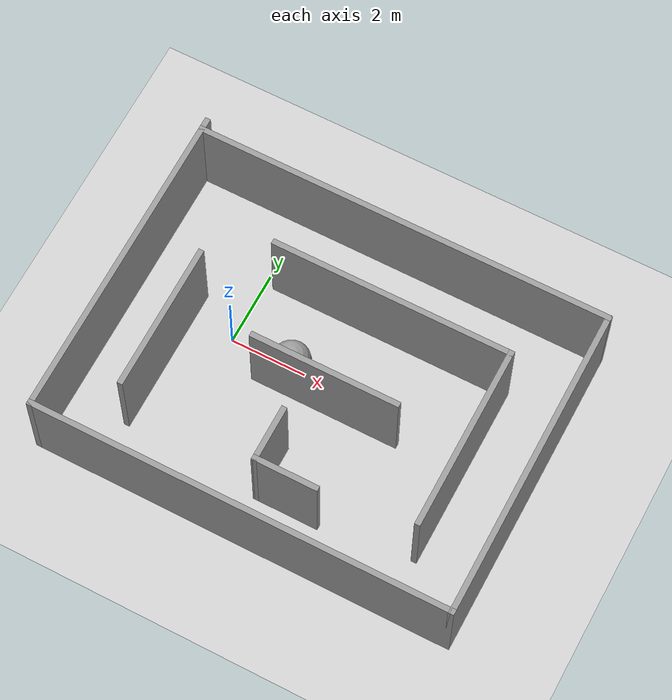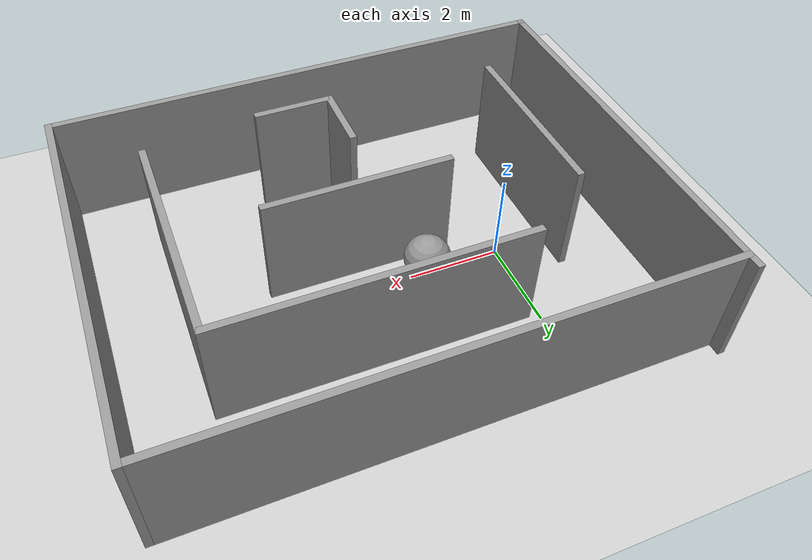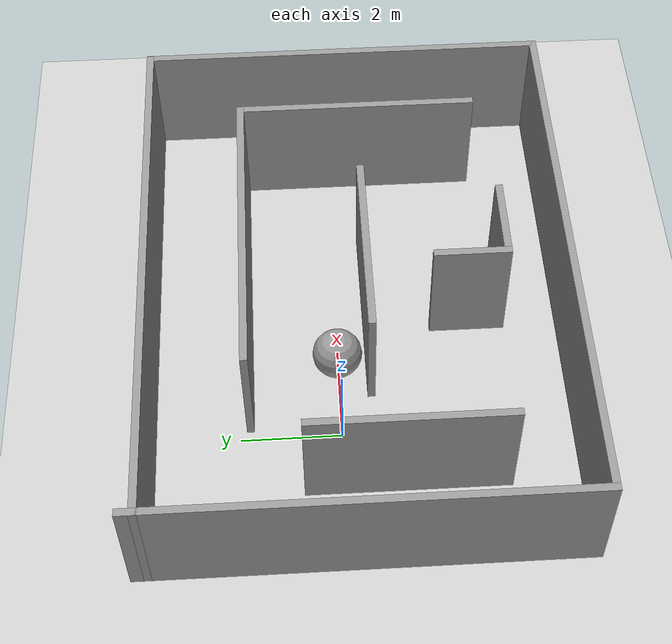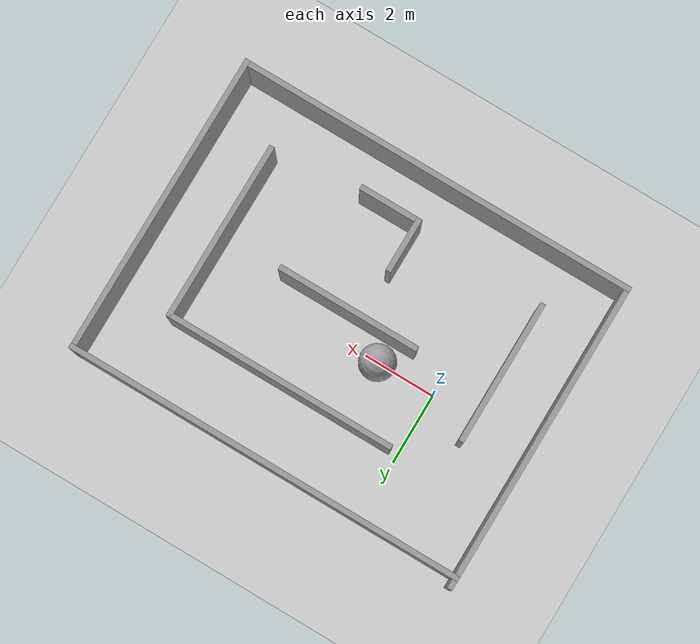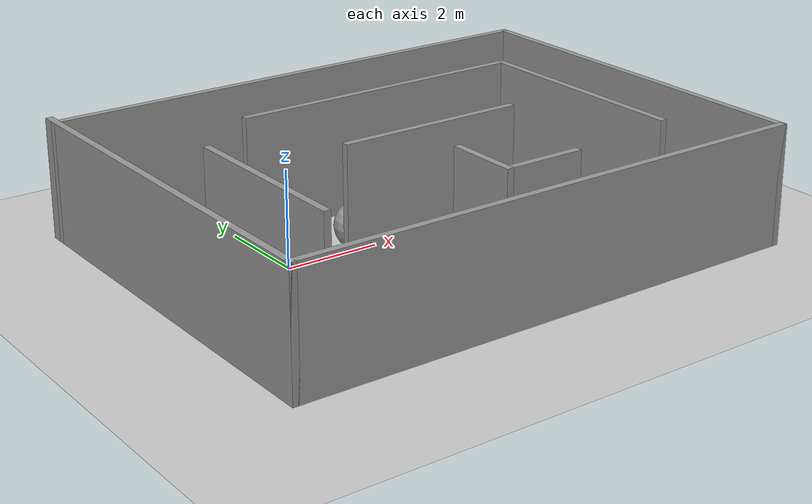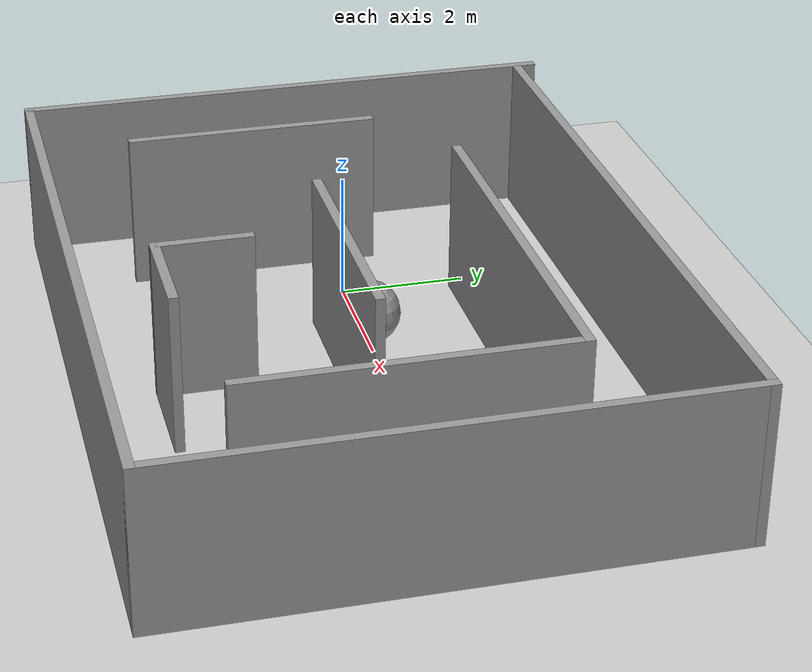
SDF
<sdf version="1.7">
 <world name="default">
  <light name="sun" type="directional">
   <pose>0 0 10 0 -0 0</pose>
   <diffuse>0.8 0.8 0.8 1</diffuse>
   <specular>0.2 0.2 0.2 1</specular>
   <attenuation>
    <range>1000</range>
    <constant>0.9</constant>
    <linear>0.01</linear>
    <quadratic>0.001</quadratic>
   </attenuation>
   <direction>-0.5 0.1 -0.9</direction>
   <spot><inner_angle>0</inner_angle><outer_angle>0</outer_angle><falloff>0</falloff></spot>
  </light>
  <model name="ground_plane">
   <static>1</static>
   <link name="link">
    <collision name="collision">
     <geometry><plane><normal>0 0 1</normal><size>100 100</size></plane></geometry>
     <surface>
      <contact><collide_bitmask>65535</collide_bitmask></contact>
      <friction><ode><mu>100</mu><mu2>50</mu2></ode></friction>
     </surface>
    </collision>
    <visual name="visual">
     <cast_shadows>0</cast_shadows>
     <geometry><plane><normal>0 0 1</normal><size>100 100</size></plane></geometry>
     <material>
      <script><uri>file://media/materials/scripts/gazebo.material</uri><name>Gazebo/Grey</name></script>
     </material>
    </visual>
   </link>
  </model>
  <gravity>0 0 -9.8</gravity>
  <magnetic_field>6e-06 2.3e-05 -4.2e-05</magnetic_field>
  <atmosphere type="adiabatic"/>
  <physics type="ode">
   <max_step_size>0.001</max_step_size>
   <real_time_factor>1</real_time_factor>
   <real_time_update_rate>1000</real_time_update_rate>
  </physics>
  <scene><ambient>0.4 0.4 0.4 1</ambient><background>0.7 0.7 0.7 1</background><shadows>1</shadows></scene>
  <spherical_coordinates>
   <surface_model>EARTH_WGS84</surface_model>
   <latitude_deg>0</latitude_deg>
   <longitude_deg>0</longitude_deg>
   <elevation>0</elevation>
   <heading_deg>0</heading_deg>
  </spherical_coordinates>
  <model name="maze">
   <pose>2.72505 -0.314727 0 0 -0 0</pose>
   <link name="Wall_16">
    <collision name="Wall_16_Collision">
     <geometry><box><size>8.75 0.15 2.5</size></box></geometry>
     <pose>0 0 1.25 0 -0 0</pose>
    </collision>
    <visual name="Wall_16_Visual">
     <pose>0 0 1.25 0 -0 0</pose>
     <geometry><box><size>8.75 0.15 2.5</size></box></geometry>
     <material>
      <script><uri>file://media/materials/scripts/gazebo.material</uri><name>Gazebo/Grey</name></script>
      <ambient>1 1 1 1</ambient>
     </material>
     <meta><layer>0</layer></meta>
    </visual>
    <pose>-5.55 0 0 0 -0 -1.5708</pose>
   </link>
   <link name="Wall_17">
    <collision name="Wall_17_Collision">
     <geometry><box><size>11.25 0.15 2.5</size></box></geometry>
     <pose>0 0 1.25 0 -0 0</pose>
    </collision>
    <visual name="Wall_17_Visual">
     <pose>0 0 1.25 0 -0 0</pose>
     <geometry><box><size>11.25 0.15 2.5</size></box></geometry>
     <material>
      <script><uri>file://media/materials/scripts/gazebo.material</uri><name>Gazebo/Grey</name></script>
      <ambient>1 1 1 1</ambient>
     </material>
     <meta><layer>0</layer></meta>
    </visual>
    <pose>0 -4.3 0 0 -0 0</pose>
   </link>
   <link name="Wall_18">
    <collision name="Wall_18_Collision">
     <geometry><box><size>8.5 0.15 2.5</size></box></geometry>
     <pose>0 0 1.25 0 -0 0</pose>
    </collision>
    <visual name="Wall_18_Visual">
     <pose>0 0 1.25 0 -0 0</pose>
     <geometry><box><size>8.5 0.15 2.5</size></box></geometry>
     <material>
      <script><uri>file://media/materials/scripts/gazebo.material</uri><name>Gazebo/Grey</name></script>
      <ambient>1 1 1 1</ambient>
     </material>
     <meta><layer>0</layer></meta>
    </visual>
    <pose>5.55 -0.125 0 0 -0 1.5708</pose>
   </link>
   <link name="Wall_19">
    <collision name="Wall_19_Collision">
     <geometry><box><size>11.25 0.15 2.5</size></box></geometry>
     <pose>0 0 1.25 0 -0 0</pose>
    </collision>
    <visual name="Wall_19_Visual">
     <pose>0 0 1.25 0 -0 0</pose>
     <geometry><box><size>11.25 0.15 2.5</size></box></geometry>
     <material>
      <script><uri>file://media/materials/scripts/gazebo.material</uri><name>Gazebo/Grey</name></script>
      <ambient>1 1 1 1</ambient>
     </material>
     <meta><layer>0</layer></meta>
    </visual>
    <pose>0 4.05 0 0 -0 3.14159</pose>
   </link>
   <link name="Wall_21">
    <collision name="Wall_21_Collision">
     <geometry><box><size>6.5 0.15 2.5</size></box></geometry>
     <pose>0 0 1.25 0 -0 0</pose>
    </collision>
    <visual name="Wall_21_Visual">
     <pose>0 0 1.25 0 -0 0</pose>
     <geometry><box><size>6.5 0.15 2.5</size></box></geometry>
     <material>
      <script><uri>file://media/materials/scripts/gazebo.material</uri><name>Gazebo/Grey</name></script>
      <ambient>1 1 1 1</ambient>
     </material>
     <meta><layer>0</layer></meta>
    </visual>
    <pose>0.720731 2.11892 0 0 -0 0</pose>
   </link>
   <link name="Wall_22">
    <collision name="Wall_22_Collision">
     <geometry><box><size>5 0.15 2.5</size></box></geometry>
     <pose>0 0 1.25 0 -0 0</pose>
    </collision>
    <visual name="Wall_22_Visual">
     <pose>0 0 1.25 0 -0 0</pose>
     <geometry><box><size>5 0.15 2.5</size></box></geometry>
     <material>
      <script><uri>file://media/materials/scripts/gazebo.material</uri><name>Gazebo/Grey</name></script>
      <ambient>1 1 1 1</ambient>
     </material>
     <meta><layer>0</layer></meta>
    </visual>
    <pose>3.89573 -0.306083 0 0 -0 -1.5708</pose>
   </link>
   <link name="Wall_24">
    <collision name="Wall_24_Collision">
     <geometry><box><size>4 0.15 2.5</size></box></geometry>
     <pose>0 0 1.25 0 -0 0</pose>
    </collision>
    <visual name="Wall_24_Visual">
     <pose>0 0 1.25 0 -0 0</pose>
     <geometry><box><size>4 0.15 2.5</size></box></geometry>
     <material>
      <script><uri>file://media/materials/scripts/gazebo.material</uri><name>Gazebo/Grey</name></script>
      <ambient>1 1 1 1</ambient>
     </material>
     <meta><layer>0</layer></meta>
    </visual>
    <pose>-3.93178 -0.896625 0 0 -0 -1.5708</pose>
   </link>
   <link name="Wall_27">
    <collision name="Wall_27_Collision">
     <geometry><box><size>4 0.15 2.5</size></box></geometry>
     <pose>0 0 1.25 0 -0 0</pose>
    </collision>
    <visual name="Wall_27_Visual">
     <pose>0 0 1.25 0 -0 0</pose>
     <geometry><box><size>4 0.15 2.5</size></box></geometry>
     <material>
      <script><uri>file://media/materials/scripts/gazebo.material</uri><name>Gazebo/Grey</name></script>
      <ambient>1 1 1 1</ambient>
     </material>
     <meta><layer>0</layer></meta>
    </visual>
    <pose>0.174306 -0.308418 0 0 -0 0</pose>
   </link>
   <link name="Wall_30">
    <collision name="Wall_30_Collision">
     <geometry><box><size>1.75 0.15 2.5</size></box></geometry>
     <pose>0 0 1.25 0 -0 0</pose>
    </collision>
    <visual name="Wall_30_Visual">
     <pose>0 0 1.25 0 -0 0</pose>
     <geometry><box><size>1.75 0.15 2.5</size></box></geometry>
     <material>
      <script><uri>file://media/materials/scripts/gazebo.material</uri><name>Gazebo/Grey</name></script>
      <ambient>1 1 1 1</ambient>
     </material>
     <meta><layer>0</layer></meta>
    </visual>
    <pose>0.597172 -3.07307 0 0 -0 0</pose>
   </link>
   <link name="Wall_32">
    <collision name="Wall_32_Collision">
     <geometry><box><size>1.54268 0.15 2.5</size></box></geometry>
     <pose>0 0 1.25 0 -0 0</pose>
    </collision>
    <visual name="Wall_32_Visual">
     <pose>0 0 1.25 0 -0 0</pose>
     <geometry><box><size>1.54268 0.15 2.5</size></box></geometry>
     <material>
      <script><uri>file://media/materials/scripts/gazebo.material</uri><name>Gazebo/Grey</name></script>
      <ambient>1 1 1 1</ambient>
     </material>
     <meta><layer>0</layer></meta>
    </visual>
    <pose>-0.202828 -2.37673 0 0 -0 -1.5708</pose>
   </link>
   <static>1</static>
  </model>
  <model name="unit_sphere">
   <pose>1.6441 0.021557 0.5 0 -0 0</pose>
   <link name="link">
    <inertial>
     <mass>1</mass>
     <inertia><ixx>0.1</ixx><ixy>0</ixy><ixz>0</ixz><iyy>0.1</iyy><iyz>0</iyz><izz>0.1</izz></inertia>
    </inertial>
    <collision name="collision"><geometry><sphere><radius>0.5</radius></sphere></geometry></collision>
    <visual name="visual">
     <geometry><sphere><radius>0.5</radius></sphere></geometry>
     <material>
      <script><name>Gazebo/Grey</name><uri>file://media/materials/scripts/gazebo.material</uri></script>
     </material>
    </visual>
   </link>
  </model>
 </world>
</sdf>
